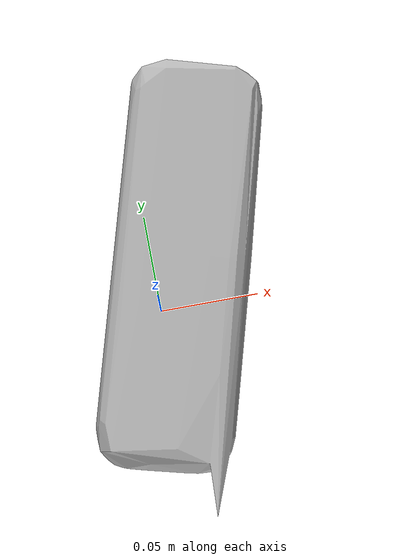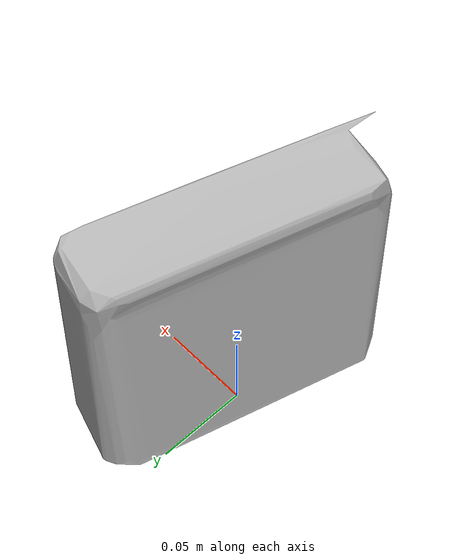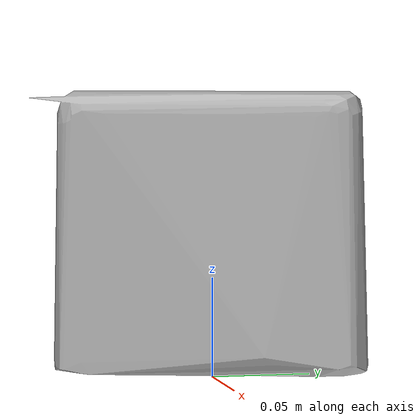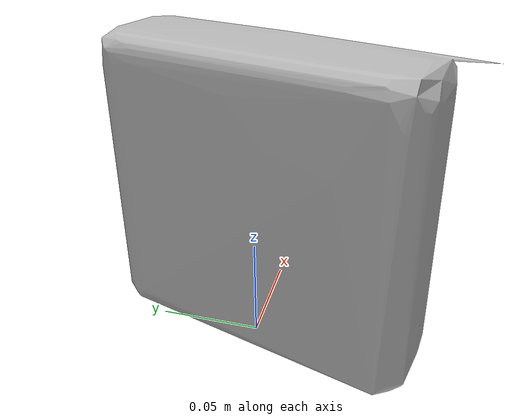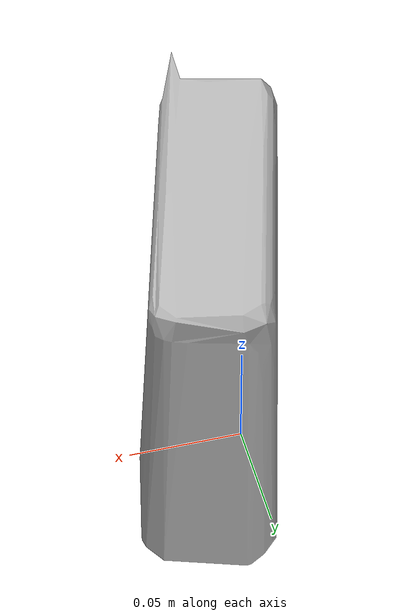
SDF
<?xml version='1.0'?>
<sdf version="1.4">
  <model name="south_beach_good_to_go_peanut_butter">
    <static>false</static>
    <link name="link">
      <inertial>
        <pose>0.011659664274973289 -0.002989423687363882 0.07252320765681852 1.608690854939555 0.009997360489407804 2.858676363103828</pose>
        <mass>0.10919343670729643</mass>
        <inertia>
          <ixx>0.00037359947912448554</ixx>
          <ixy>7.821298101842672e-22</ixy>
          <ixz>1.9183314992488126e-20</ixz>
          <iyy>0.00022849070128110226</iyy>
          <iyz>-2.639490061193099e-21</iyz>
          <izz>0.000194862018500907</izz>
        </inertia>
      </inertial>
      <collision name="collision">
        <geometry>
          <mesh>
            <!-- Use a downsampled mesh for collisions -->
            <uri>model:///south_beach_good_to_go_peanut_butter/south_beach_good_to_go_peanut_butter_250_collision.obj</uri>
	        </mesh>
        </geometry>
        <surface>
      </surface>
      </collision>
      <visual name="visual">
        <geometry>
          <mesh>
            <uri>model:///south_beach_good_to_go_peanut_butter/optimized_tsdf_texture_mapped_mesh.obj</uri>
	        </mesh>
        </geometry>
        <material>
          <script>
            <uri>model:///south_beach_good_to_go_peanut_butter/south_beach_good_to_go_peanut_butter.material</uri>
            <name>south_beach_good_to_go_peanut_butter</name>
          </script>
        </material>
      </visual>
    </link>
  </model>
</sdf>
